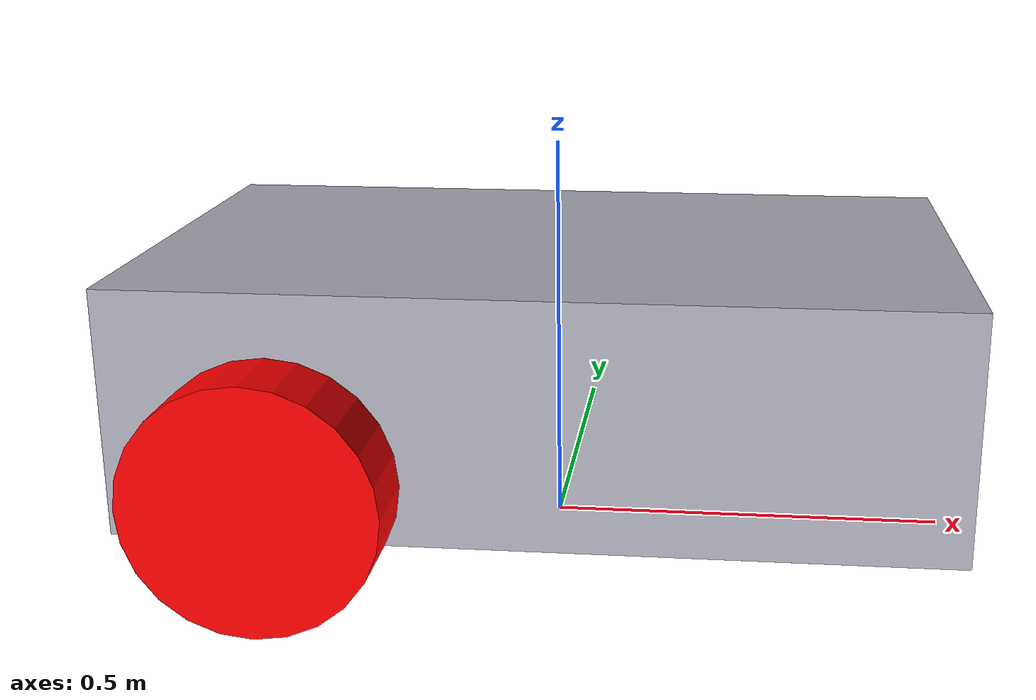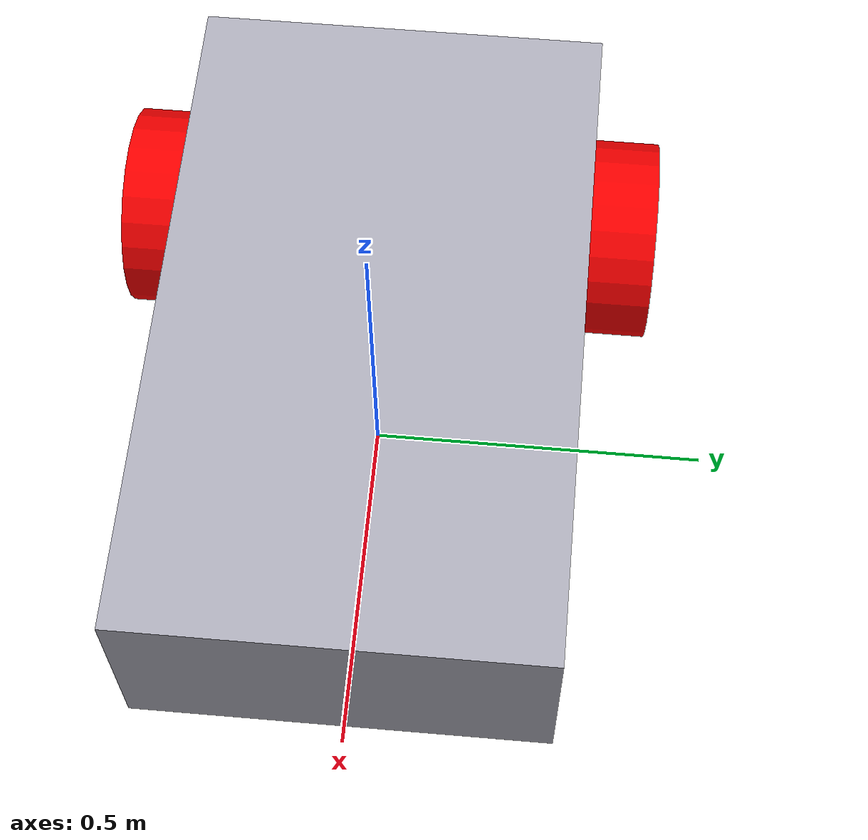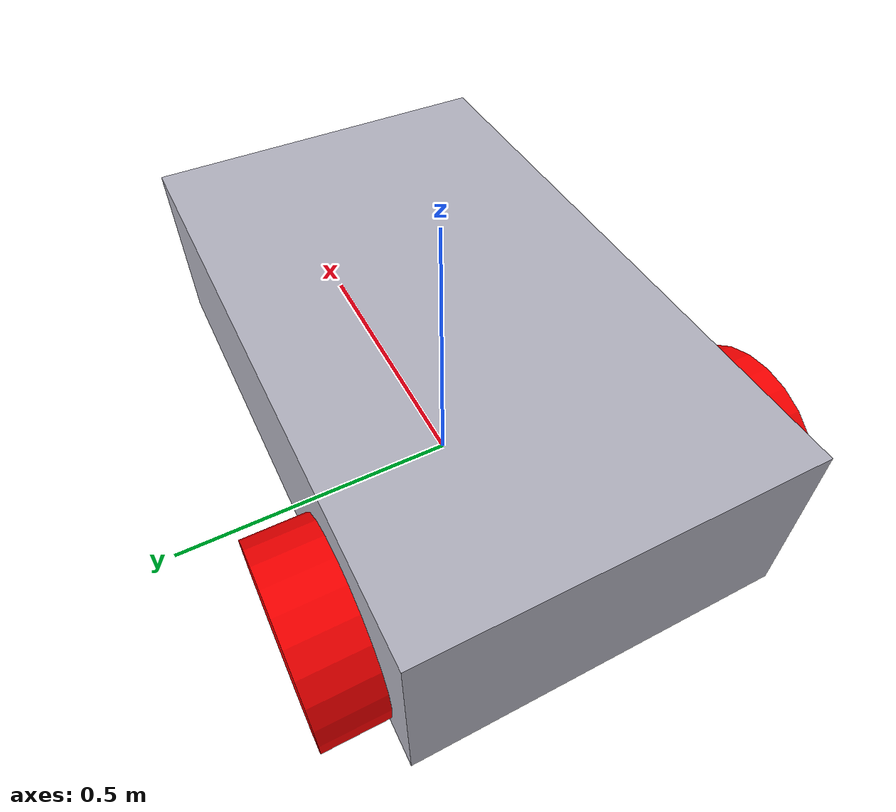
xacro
<?xml version="1.0"?>
<robot xmlns:xacro="http://www.ros.org/wiki/xacro" name="mobile_robot">

  <xacro:property name="len" value="1.0"/>
  <xacro:property name="height" value="0.3"/>
  <xacro:property name="width" value="0.6"/>
  <xacro:property name="r" value="0.15"/>
  <xacro:property name="w" value="0.1"/>

  <!--do not ask why plutonium, it was just fun-->

  <xacro:property name="density_plutonium" value="19816"/>

  <xacro:property name="chassis_m" value="${len * width * height * density_plutonium}"/>
  <xacro:property name="wheel_m" value="${pi * r * r * w * density_plutonium}"/>
  <xacro:property name="caster_m" value="${(4.0/3.0) * pi * r * r * r * density_plutonium}"/>

  <xacro:property name="s1" value="${height/2 + r/2}"/>
  <xacro:property name="s2" value="${2 * r}"/>
  <xacro:property name="s3" value="${width/2 + w/2}"/>
  <xacro:property name="s4" value="${2 * r}"/>

  <material name="grey">
    <color rgba="0.7 0.7 0.75 1.0"/>
  </material>
  <material name="red">
    <color rgba="1 0 0 1"/>
  </material>

<!--base-->

  <link name="base_link">
    <visual>
      <origin xyz="0 0 ${s1}" rpy="0 0 0"/>
      <geometry>
        <box size="${len} ${width} ${height}"/>
      </geometry>
      <material name="grey"/>
    </visual>
    <collision>
      <origin xyz="0 0 ${s1}" rpy="0 0 0"/>
      <geometry>
        <box size="${len} ${width} ${height}"/>
      </geometry>
    </collision>
    <inertial>
      <origin xyz="0 0 ${s1}" rpy="0 0 0"/>
      <mass value="${chassis_m}"/>
      <inertia ixx="${(chassis_m/12) * (height*height + width*width)}" ixy="0.0" ixz="0.0"
               iyy="${(chassis_m/12) * (len*len + width*width)}" iyz="0.0"
               izz="${(chassis_m/12) * (len*len + height*height)}"/>
    </inertial>
  </link>

<!--left_wheel-->

  <link name="left_wheel">
    <visual>
      <geometry>
        <cylinder radius="${r}" length="${w}"/>
      </geometry>
      <material name="red"/>
      <origin rpy="${pi/2} 0 0"/>
    </visual>
    <collision>
      <geometry>
        <cylinder radius="${r}" length="${w}"/>
      </geometry>
      <origin rpy="${pi/2} 0 0"/>
    </collision>
    <inertial>
      <mass value="${wheel_m}"/>
      <inertia ixx="${(wheel_m/12) * (3*r*r + w*w)}" ixy="0.0" ixz="0.0"
               iyy="${(wheel_m/12) * (3*r*r + w*w)}" iyz="0.0"
               izz="${(wheel_m/2) * (r*r)}"/>
    </inertial>
  </link>

  <joint name="left_wheel_joint" type="continuous">
    <parent link="base_link"/>
    <child link="left_wheel"/>
    <origin xyz="${-s2} ${s3} ${r}" rpy="0 0 0"/>
    <axis xyz="0 1 0"/>
  </joint>

<!--right_wheel-->

  <link name="right_wheel">
    <visual>
      <geometry>
        <cylinder radius="${r}" length="${w}"/>
      </geometry>
      <material name="red"/>
      <origin rpy="${pi/2} 0 0"/>
    </visual>
    <collision>
      <geometry>
        <cylinder radius="${r}" length="${w}"/>
      </geometry>
      <origin rpy="${pi/2} 0 0"/>
    </collision>
    <inertial>
      <mass value="${wheel_m}"/>
      <inertia ixx="${(wheel_m/12) * (3*r*r + w*w)}" ixy="0.0" ixz="0.0"
               iyy="${(wheel_m/12) * (3*r*r + w*w)}" iyz="0.0"
               izz="${(wheel_m/2) * (r*r)}"/>
    </inertial>
  </link>

  <joint name="right_wheel_joint" type="continuous">
    <parent link="base_link"/>
    <child link="right_wheel"/>
    <origin xyz="${-s2} ${-s3} ${r}" rpy="0 0 0"/>
    <axis xyz="0 1 0"/>
  </joint>

<!--caster_wheel-->

  <link name="caster_wheel">
    <visual>
      <geometry>
        <sphere radius="${r}"/>
      </geometry>
      <material name="red"/>
    </visual>
    <collision>
      <geometry>
        <sphere radius="${r}"/>
      </geometry>
    </collision>
    <inertial>
      <mass value="${caster_m}"/>
      <inertia ixx="${(2.0/5.0) * caster_m * (r*r)}" ixy="0.0" ixz="0.0"
               iyy="${(2.0/5.0) * caster_m * (r*r)}" iyz="0.0"
               izz="${(2.0/5.0) * caster_m * (r*r)}"/>
    </inertial>
  </link>

  <joint name="caster_joint" type="fixed">
    <parent link="base_link"/>
    <child link="caster_wheel"/>
    <origin xyz="${s4} 0 ${r}" rpy="0 0 0"/>
  </joint>

</robot>
